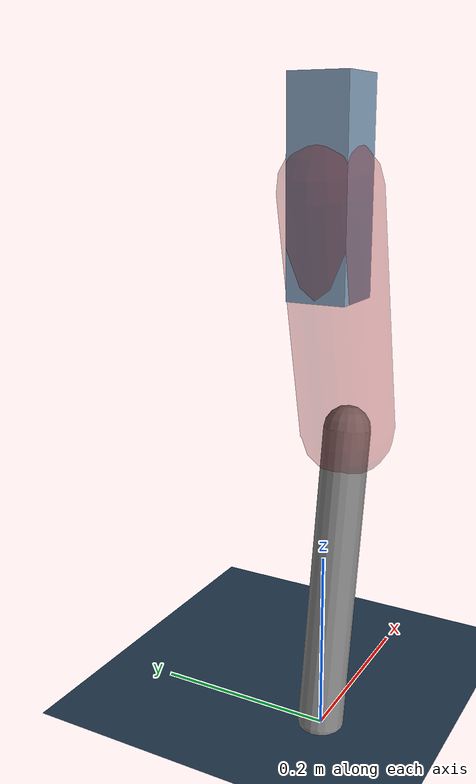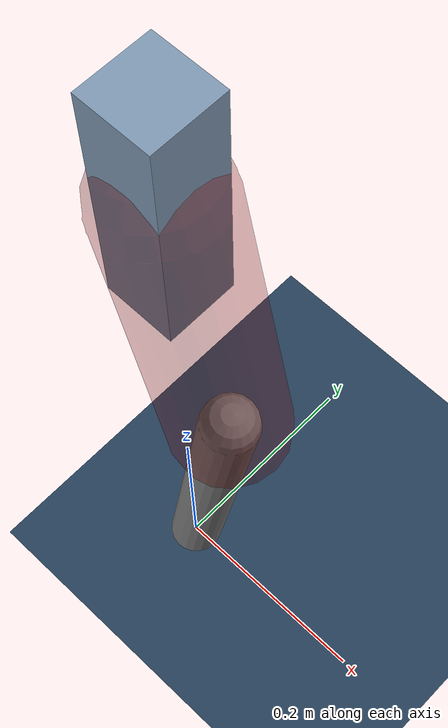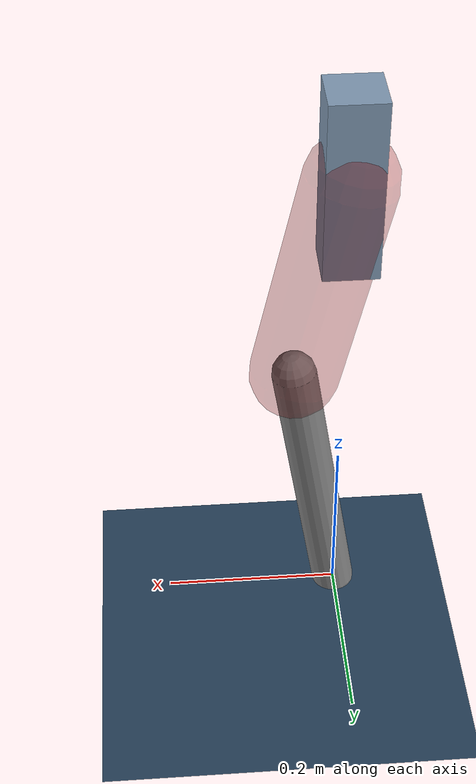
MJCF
<mujoco model="Hopper2D">
	<compiler inertiafromgeom="true" angle="radian" />
	<option timestep="0.001" integrator="implicit" cone="elliptic" solver="Newton" tolerance="1e-10" />

	<default>
		<geom contype="1" conaffinity="1" condim="3" friction="2 0.005 0.0001" solref="0.005 1" />
		<joint limited="true" damping="0.1" />
	</default>

	<asset>
		<texture name="skybox" type="skybox" builtin="gradient" rgb1=".4 .6 .8" rgb2="0 0 0" width="800" height="800" />
		<texture name="grid" type="2d" builtin="checker" rgb1=".1 .2 .3" rgb2=".2 .3 .4" width="300" height="300" mark="edge" markrgb=".2 .3 .4" />
		<material name="ground" texture="grid" texrepeat="1 1" texuniform="true" reflectance="0.1" />
		<material name="leg" rgba="0.5 0.6 0.7 1" />
	</asset>

	<worldbody>

		<geom name="floor" type="plane" size="5 5 0.25" material="ground" />

		<light directional="false" diffuse="0.8 0.8 0.8" specular="0.3 0.3 0.3" pos="0 0 2" dir="0 0 -1" />
		<light mode="targetbodycom" target="base" directional="false" diffuse="0.8 0.8 0.8" specular="0.3 0.3 0.3" pos="0 0 2" dir="0 0 -1" />

		<camera name="fixed" pos="0 -2 1" xyaxes="1 0 0 0 0 1" />
		<camera name="tracking" mode="trackcom" pos="0 -3 1" />

		<body name="root" pos="0 0 0.5707809158062228">
			<joint name="slide_x" type="slide" axis="1 0 0" range="-100 100" />
			<joint name="slide_z" type="slide" axis="0 0 1" range="0 10" />

			<body name="base" pos="0 0 0">
				<geom name="torso" type="box" size="0.03 0.03 0.1" mass="2.531" material="leg" />

				<body name="link1" pos="0 0 0" euler="0 1.3559062503153336 0">
					<joint type="hinge" axis="0 -1 0" pos="0 0 0" name="hinge1" limited="true" range="-3.14 3.14" stiffness="0" damping="0.1" />
					<geom name="thigh" type="capsule" fromto="0 0 0 0.24895348256898378 0 0" size="0.05" rgba="0.5 0 0 0.3" mass="0.8536790546793578" />

					<body name="link2" pos="0.24895348256898378 0 0" euler="0 0.3755638156807328 0">
						<joint type="hinge" axis="0 -1 0" pos="0 0 0" name="hinge2" limited="true" range="-3.14 3.14" stiffness="0" damping="0.1" />
						<geom name="shank" type="capsule" fromto="0 0 0 0.33182743323723907 0 0" size="0.025" mass="0.5092619465897912" />

					</body>
				</body>
			</body>
		</body>
	</worldbody>

	<actuator>
		<motor name="torque1" joint="hinge1" ctrlrange="-20.72071200980274 20.72071200980274" ctrllimited="true" gear="1" />
		<motor name="torque2" joint="hinge2" ctrlrange="-148.3266660554745 148.3266660554745" ctrllimited="true" gear="1" />
	</actuator>
</mujoco>
